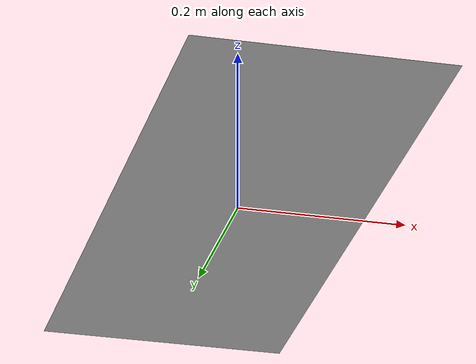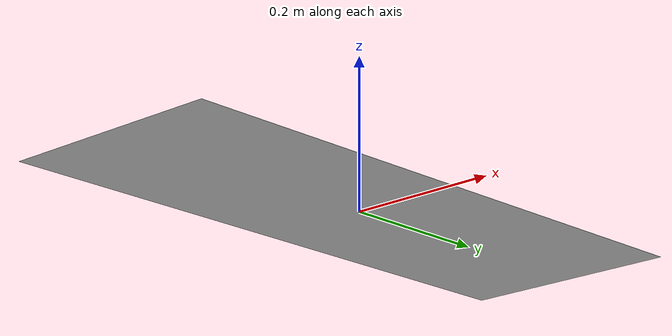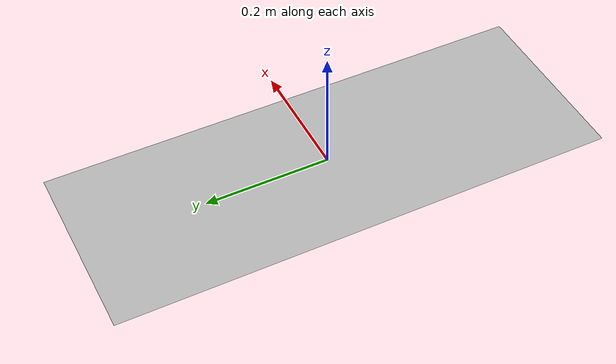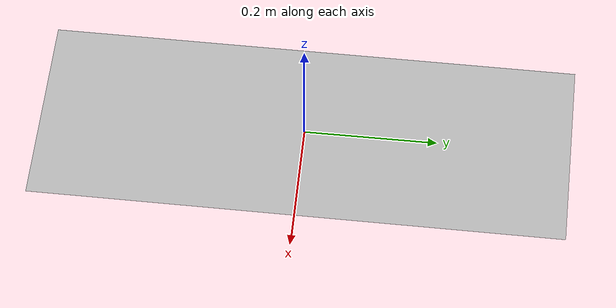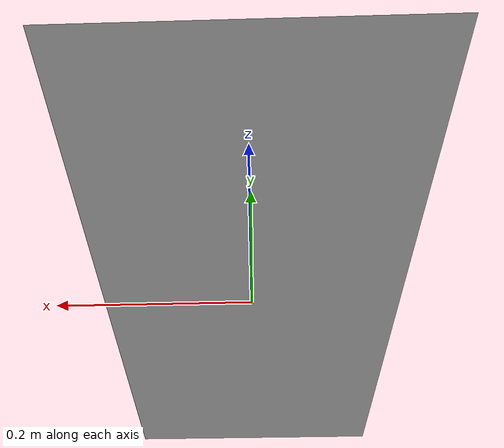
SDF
<?xml version='1.0'?>
<sdf version='1.7'>
  <model name='finish_line'>
    <link name='link'>
      <pose>0 0 0 0 -0 0</pose>
      <visual name='visual'>
        <geometry>
          <box>
            <size>0.299197 0.8 0</size>
          </box>
        </geometry>
        <material>
          <script>
            <uri>model://finish_line/materials/scripts</uri>
            <uri>model://finish_line/materials/textures</uri>
            <name>finishLine/Diffuse</name>
          </script>
          <shader type='pixel'/>
        </material>
        <pose>0 0 0 0 -0 0</pose>
        <transparency>0</transparency>
        <cast_shadows>1</cast_shadows>
      </visual>
    </link>
    <static>1</static>
  </model>
</sdf>
